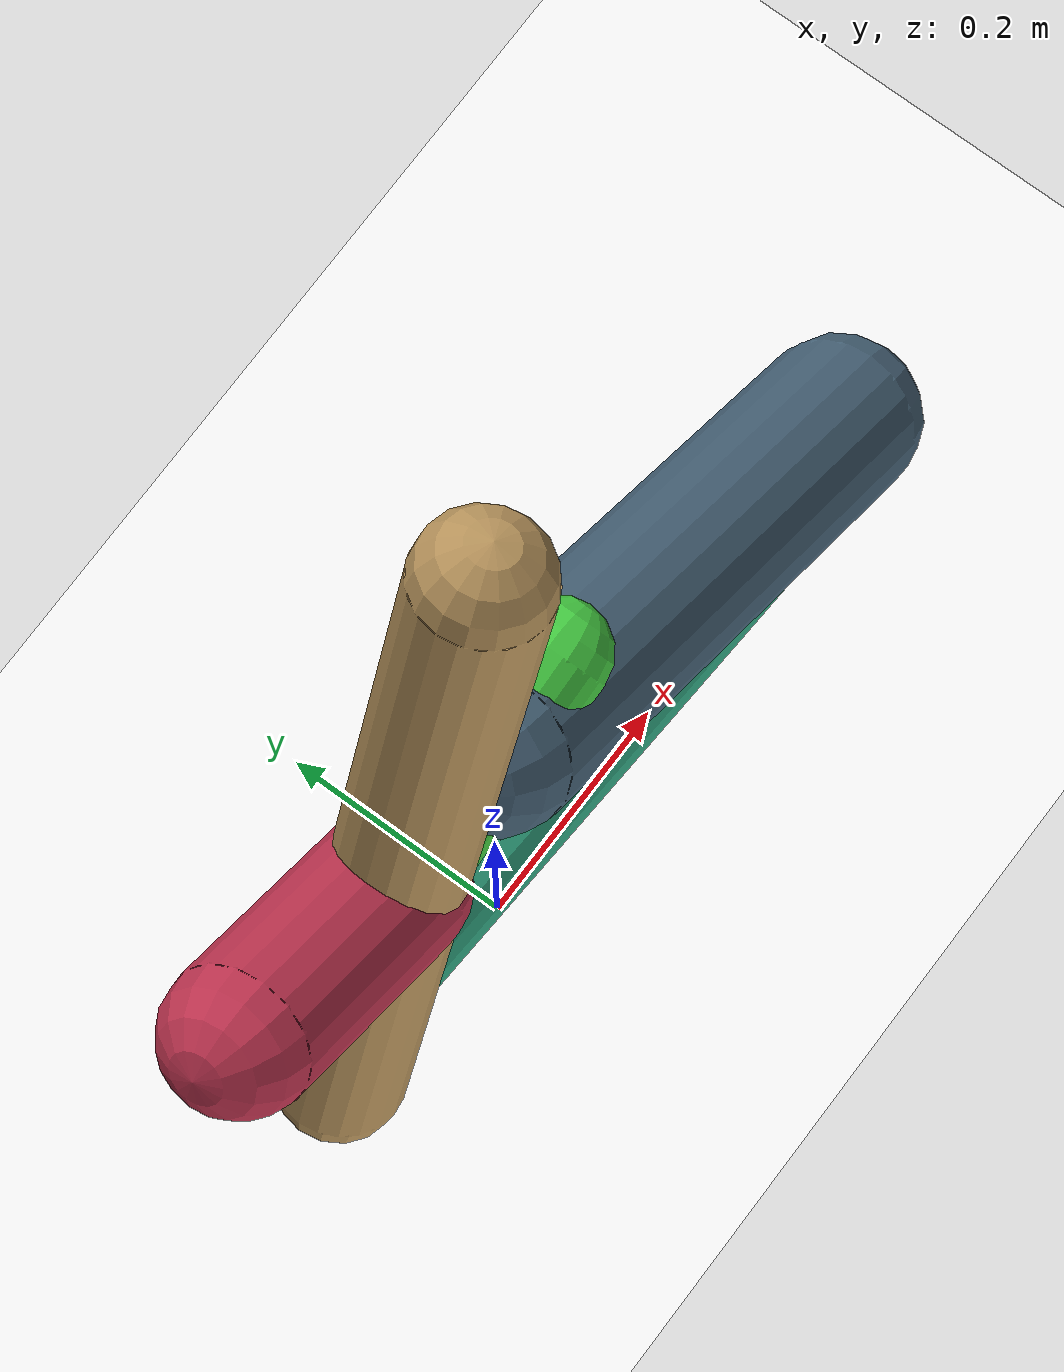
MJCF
<mujoco model="morphology">
  <option timestep="0.01"/>
  <default>
    <default class="/"/>
  </default>
  <asset>
    <texture name="texplane" type="2d" builtin="checker" rgb1="0.1 0.2 0.3" rgb2="0.2 0.3 0.4" width="300" height="300"/>
    <material name="MatPlane" class="/" texture="texplane" texrepeat="20 20" specular="1" shininess="1" reflectance="0.5"/>
  </asset>
  <worldbody>
    <light name="//unnamed_light_0" class="/" directional="true" pos="0 0 1.5" dir="0 0 -1.3" cutoff="1e+02" exponent="1" diffuse="1 1 1" specular="0.1 0.1 0.1"/>
    <geom name="ground" class="/" type="plane" size="15 15 0.5" material="MatPlane" rgba="1 1 1 1"/>
    <body name="body" pos="0 0 0.85">
      <geom name="geom0" class="/" type="capsule" contype="1" conaffinity="1" condim="3" size="0.052" rgba="0.72 0.58 0.36 1" friction="0.4 0.1 0.1" fromto="0 0 0 -0.2 0 -0.74"/>
      <body name="body1" pos="-0.12 0 -0.42">
        <geom name="geom1" class="/" type="capsule" contype="1" conaffinity="1" condim="3" size="0.042" rgba="0.27 0.8 0.26 1" friction="0.4 0.1 0.1" fromto="0 0 0 0.2 0 0.052"/>
        <body name="body2" pos="0.12 0 0.032">
          <geom name="geom2" class="/" type="capsule" contype="1" conaffinity="1" condim="3" size="0.067" rgba="0.27 0.38 0.46 1" friction="0.4 0.1 0.1" fromto="0 0 0 0.45 0 -0.32"/>
          <joint name="joint2" class="/" type="hinge" axis="0 1 0" limited="true" stiffness="20" range="-67 67" armature="0.1" damping="2"/>
        </body>
        <body name="body3" pos="0.003 0 0.00079">
          <geom name="geom3" class="/" type="capsule" contype="1" conaffinity="1" condim="3" size="0.059" rgba="0.74 0.2 0.31 1" friction="0.4 0.1 0.1" fromto="0 0 0 -0.17 0 0.11"/>
          <joint name="joint3" class="/" type="hinge" axis="0 1 0" limited="true" stiffness="20" range="-47 47" armature="0.1" damping="2"/>
        </body>
      </body>
      <body name="body4" pos="-0.16 0 -0.58">
        <geom name="geom4" class="/" type="capsule" contype="1" conaffinity="1" condim="3" size="0.043" rgba="0.2 0.67 0.52 1" friction="0.4 0.1 0.1" fromto="0 0 0 0.52 0 -0.18"/>
        <joint name="joint4" class="/" type="hinge" axis="0 1 0" limited="true" stiffness="20" range="-58 58" armature="0.1" damping="2"/>
      </body>
      <joint name="rootx" class="/" type="slide" axis="1 0 0" limited="false" stiffness="0" armature="0" damping="0"/>
      <joint name="rootz" class="/" type="slide" axis="0 0 1" limited="false" stiffness="0" armature="0" damping="0"/>
      <joint name="rooty" class="/" type="hinge" axis="0 1 0" limited="false" stiffness="0" armature="0" damping="0"/>
    </body>
  </worldbody>
  <actuator>
    <motor name="motor2" class="/" ctrllimited="true" ctrlrange="-1 1" gear="1.4e+02" joint="joint2"/>
    <motor name="motor3" class="/" ctrllimited="true" ctrlrange="-1 1" gear="1.6e+02" joint="joint3"/>
    <motor name="motor4" class="/" ctrllimited="true" ctrlrange="-1 1" gear="1.8e+02" joint="joint4"/>
  </actuator>
  <sensor>
    <subtreelinvel name="velocity" body="body"/>
  </sensor>
</mujoco>
